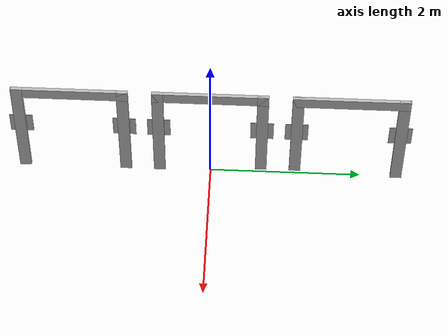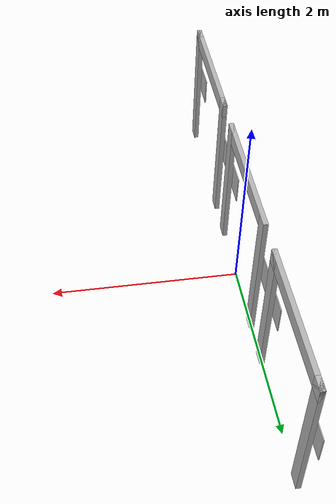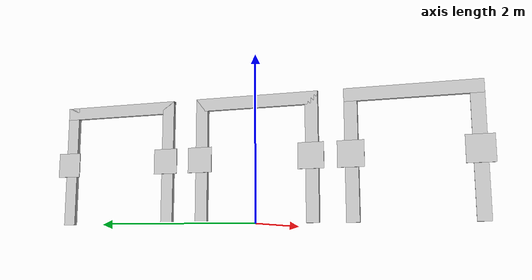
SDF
<?xml version="1.0" ?>
<sdf version="1.6">
  <model name="gate_pair_00">
    <static>true</static>

    <include>
      <uri>model://gate_00</uri>
      <name>left_gate</name>
      <pose>0 1.8 0 0 0 0</pose>
    </include>

    <include>
      <uri>model://gate_01</uri>
      <name>center_gate</name>
      <pose>0 -0.0 0 0 0 0</pose>
    </include>

    <include>
      <uri>model://gate_02</uri>
      <name>right_gate</name>
      <pose>0 -1.8 0 0 0 0</pose>
    </include>

  </model>
</sdf>

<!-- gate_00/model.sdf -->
<sdf version="1.6">
  <model name="gate_00">
    <static>true</static>

    <!-- Frame -->

    <link name="bar_top">
      <pose>0 0 1.425 0 0 0</pose>
      <visual name="top">
        <geometry><box><size>0.05 1.5 0.15</size></box></geometry>
      </visual>
    </link>

    <link name="bar_left">
      <pose>0 0.675 0.75 0 0 0</pose>
      <visual name="left">
        <geometry><box><size>0.05 0.15 1.5</size></box></geometry>
      </visual>
    </link>

    <link name="bar_right">
      <pose>0 -0.675 0.75 0 0 0</pose>
      <visual name="right">
        <geometry><box><size>0.05 0.15 1.5</size></box></geometry>
      </visual>
    </link>

    <!-- Tags -->
    <include>
      <uri>model://apriltag_36h11_00</uri>
      <name>tag0</name>
      <pose>-0.075 0.675 0.75 0 0 -1.5708</pose>
    </include>

    <include>
      <uri>model://apriltag_36h11_01</uri>
      <name>tag1</name>
      <pose>-0.075 -0.675 0.75 0 0 1.5708</pose>
    </include>

  </model>
</sdf>

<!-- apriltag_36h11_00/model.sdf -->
<sdf version='1.6'>
  <model name='apriltag_36h11_00'>
    <static>true</static>
    <link name='link'>
      <pose>0 0 0 0 0 0</pose>
      <visual name='visual'>
        <geometry>
          <box>
            <size>0.3 0.01 0.3</size>  <!-- width, depth, height -->
          </box>
        </geometry>
        <material>
          <script>
            <uri>model://apriltag_36h11_00/materials/scripts</uri>
            <uri>model://apriltag_36h11_00/materials/textures</uri>
            <name>apriltag_36h11_00</name>
          </script>
        </material>
      </visual>
      <collision name="collision">
        <geometry>
          <box>
            <size>0.3 0.01 0.3</size>
          </box>
        </geometry>
      </collision>
    </link>
  </model>
</sdf>

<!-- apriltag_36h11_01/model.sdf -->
<sdf version='1.6'>
  <model name='apriltag_36h11_01'>
    <static>true</static>
    <link name='link'>
      <pose>0 0 0 0 0 0</pose>
      <visual name='visual'>
        <geometry>
          <box>
            <size>0.3 0.01 0.3</size>  <!-- width, depth, height -->
          </box>
        </geometry>
        <material>
          <script>
            <uri>model://apriltag_36h11_01/materials/scripts</uri>
            <uri>model://apriltag_36h11_01/materials/textures</uri>
            <name>apriltag_36h11_01</name>
          </script>
        </material>
      </visual>
      <collision name="collision">
        <geometry>
          <box>
            <size>0.3 0.01 0.3</size>
          </box>
        </geometry>
      </collision>
    </link>
  </model>
</sdf>

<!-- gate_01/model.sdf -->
<sdf version="1.6">
  <model name="gate_01">
    <static>true</static>

    <!-- Frame -->

    <link name="bar_top">
      <pose>0 0 1.425 0 0 0</pose>
      <visual name="top">
        <geometry><box><size>0.05 1.5 0.15</size></box></geometry>
      </visual>
    </link>

    <link name="bar_left">
      <pose>0 0.675 0.75 0 0 0</pose>
      <visual name="left">
        <geometry><box><size>0.05 0.15 1.5</size></box></geometry>
      </visual>
    </link>

    <link name="bar_right">
      <pose>0 -0.675 0.75 0 0 0</pose>
      <visual name="right">
        <geometry><box><size>0.05 0.15 1.5</size></box></geometry>
      </visual>
    </link>

    <!-- Tags -->
    <include>
      <uri>model://apriltag_36h11_02</uri>
      <name>tag0</name>
      <pose>-0.075 0.675 0.75 0 0 -1.5708</pose>
    </include>

    <include>
      <uri>model://apriltag_36h11_03</uri>
      <name>tag1</name>
      <pose>-0.075 -0.675 0.75 0 0 1.5708</pose>
    </include>

  </model>
</sdf>

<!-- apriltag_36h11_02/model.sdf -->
<sdf version='1.6'>
  <model name='apriltag_36h11_02'>
    <static>true</static>
    <link name='link'>
      <pose>0 0 0 0 0 0</pose>
      <visual name='visual'>
        <geometry>
          <box>
            <size>0.3 0.01 0.3</size>  <!-- width, depth, height -->
          </box>
        </geometry>
        <material>
          <script>
            <uri>model://apriltag_36h11_02/materials/scripts</uri>
            <uri>model://apriltag_36h11_02/materials/textures</uri>
            <name>apriltag_36h11_02</name>
          </script>
        </material>
      </visual>
      <collision name="collision">
        <geometry>
          <box>
            <size>0.3 0.01 0.3</size>
          </box>
        </geometry>
      </collision>
    </link>
  </model>
</sdf>

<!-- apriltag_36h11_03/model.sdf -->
<sdf version='1.6'>
  <model name='apriltag_36h11_03'>
    <static>true</static>
    <link name='link'>
      <pose>0 0 0 0 0 0</pose>
      <visual name='visual'>
        <geometry>
          <box>
            <size>0.3 0.01 0.3</size>  <!-- width, depth, height -->
          </box>
        </geometry>
        <material>
          <script>
            <uri>model://apriltag_36h11_03/materials/scripts</uri>
            <uri>model://apriltag_36h11_03/materials/textures</uri>
            <name>apriltag_36h11_03</name>
          </script>
        </material>
      </visual>
      <collision name="collision">
        <geometry>
          <box>
            <size>0.3 0.01 0.3</size>
          </box>
        </geometry>
      </collision>
    </link>
  </model>
</sdf>

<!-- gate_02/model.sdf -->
<sdf version="1.6">
  <model name="gate_02">
    <static>true</static>

    <!-- Frame -->
    <link name="bar_top">
      <pose>0 0 1.425 0 0 0</pose>
      <visual name="top">
        <geometry><box><size>0.05 1.5 0.15</size></box></geometry>
      </visual>
    </link>

    <link name="bar_left">
      <pose>0 0.675 0.75 0 0 0</pose>
      <visual name="left">
        <geometry><box><size>0.05 0.15 1.5</size></box></geometry>
      </visual>
    </link>

    <link name="bar_right">
      <pose>0 -0.675 0.75 0 0 0</pose>
      <visual name="right">
        <geometry><box><size>0.05 0.15 1.5</size></box></geometry>
      </visual>
    </link>

    <!-- Tags -->
    <include>
      <uri>model://apriltag_36h11_04</uri>
      <name>tag0</name>
      <pose>-0.075 0.675 0.75 0 0 -1.5708</pose>
    </include>

    <include>
      <uri>model://apriltag_36h11_05</uri>
      <name>tag1</name>
      <pose>-0.075 -0.675 0.75 0 0 1.5708</pose>
    </include>

  </model>
</sdf>

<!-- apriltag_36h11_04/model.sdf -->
<sdf version='1.6'>
  <model name='apriltag_36h11_04'>
    <static>true</static>
    <link name='link'>
      <pose>0 0 0 0 0 0</pose>
      <visual name='visual'>
        <geometry>
          <box>
            <size>0.3 0.01 0.3</size>  <!-- width, depth, height -->
          </box>
        </geometry>
        <material>
          <script>
            <uri>model://apriltag_36h11_04/materials/scripts</uri>
            <uri>model://apriltag_36h11_04/materials/textures</uri>
            <name>apriltag_36h11_04</name>
          </script>
        </material>
      </visual>
      <collision name="collision">
        <geometry>
          <box>
            <size>0.3 0.01 0.3</size>
          </box>
        </geometry>
      </collision>
    </link>
  </model>
</sdf>

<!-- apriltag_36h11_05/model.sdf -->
<sdf version='1.6'>
  <model name='apriltag_36h11_05'>
    <static>true</static>
    <link name='link'>
      <pose>0 0 0 0 0 0</pose>
      <visual name='visual'>
        <geometry>
          <box>
            <size>0.3 0.01 0.3</size>  <!-- width, depth, height -->
          </box>
        </geometry>
        <material>
          <script>
            <uri>model://apriltag_36h11_05/materials/scripts</uri>
            <uri>model://apriltag_36h11_05/materials/textures</uri>
            <name>apriltag_36h11_05</name>
          </script>
        </material>
      </visual>
      <collision name="collision">
        <geometry>
          <box>
            <size>0.3 0.01 0.3</size>
          </box>
        </geometry>
      </collision>
    </link>
  </model>
</sdf>
